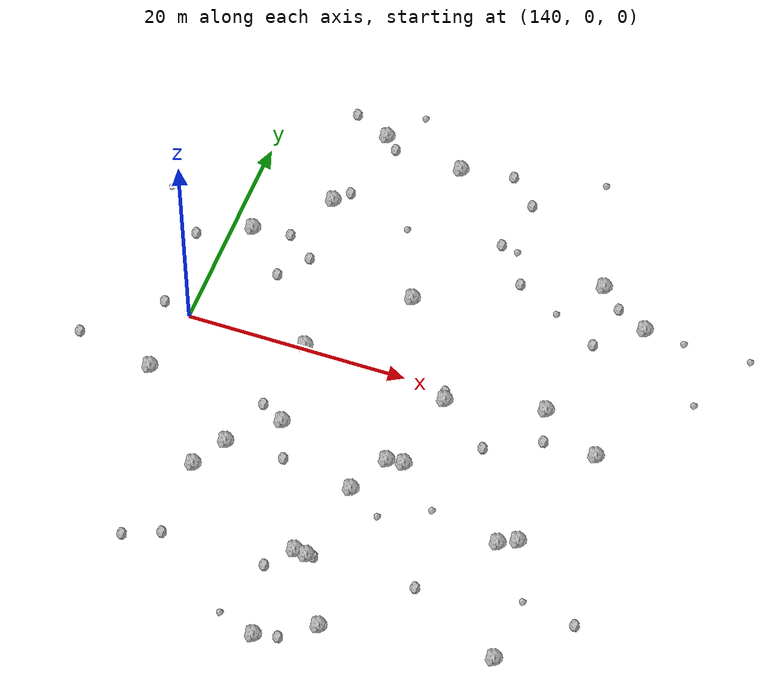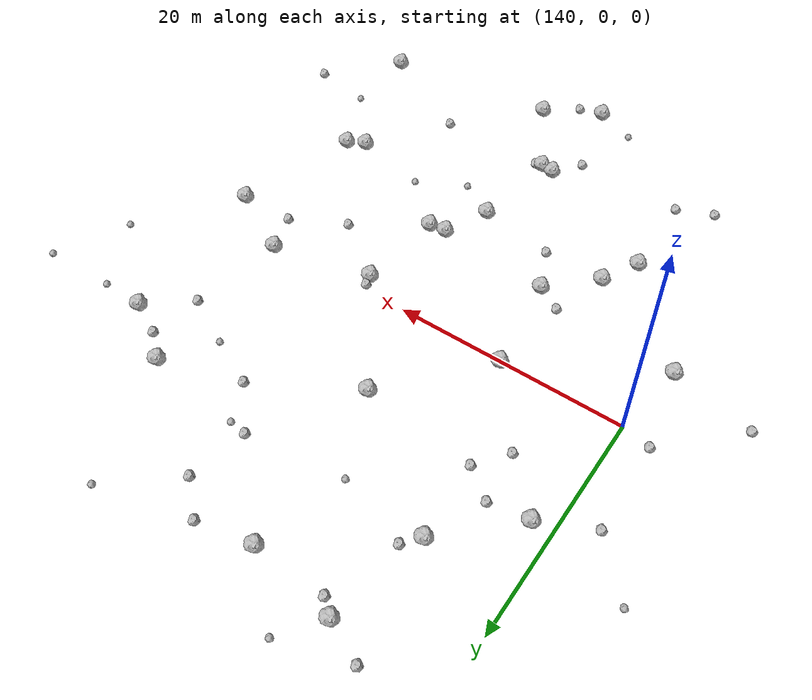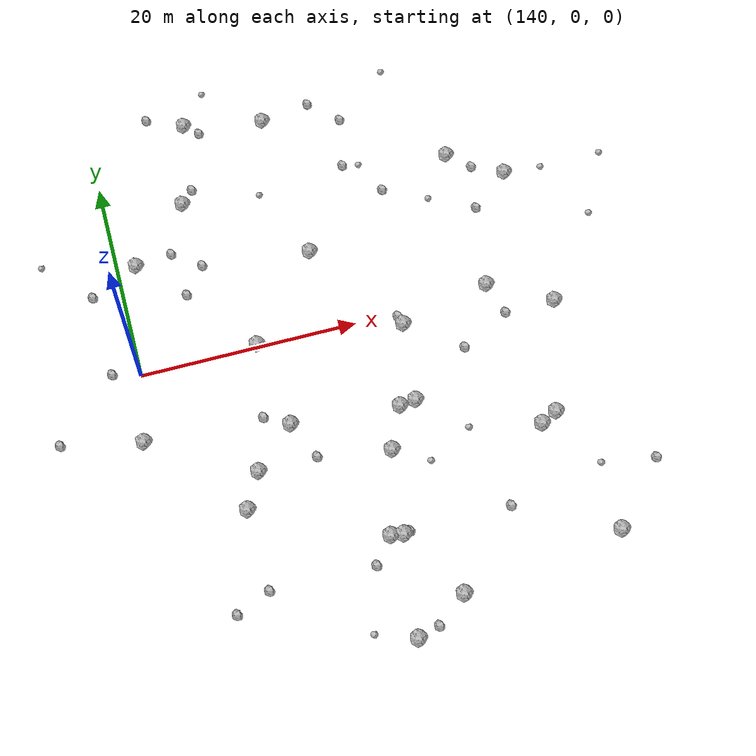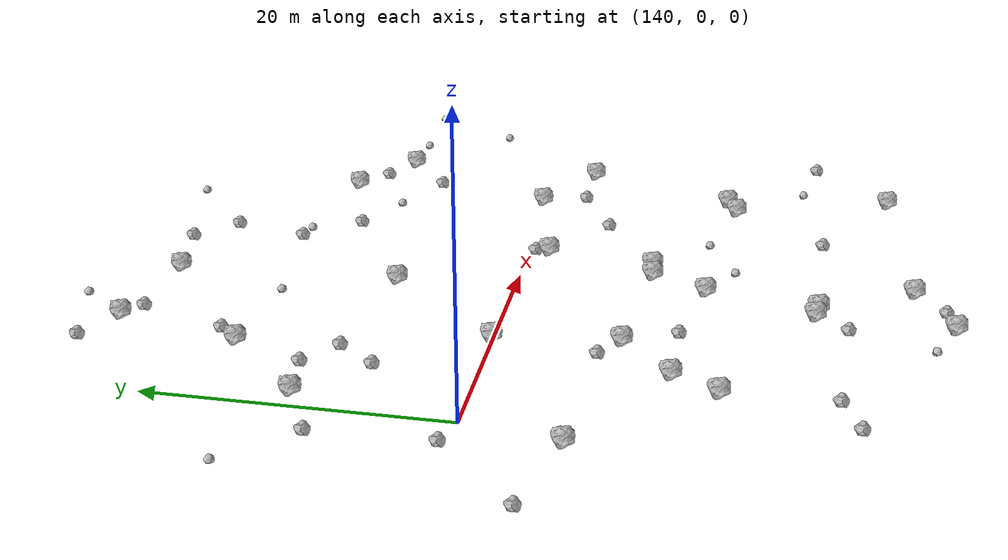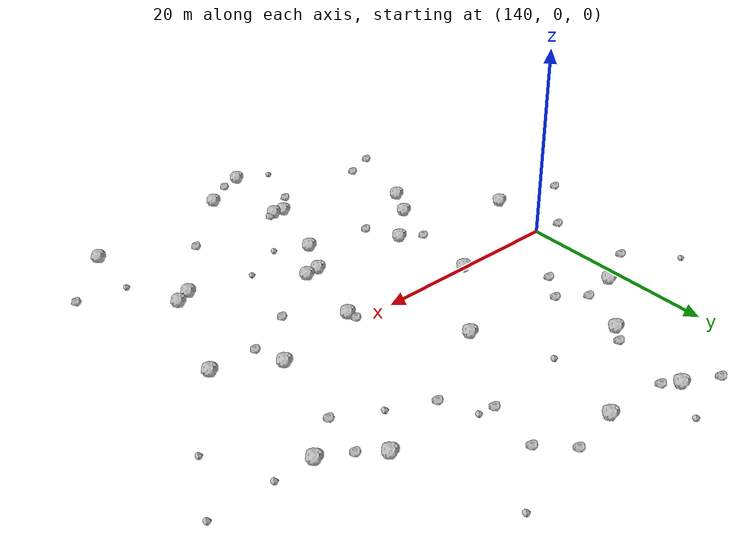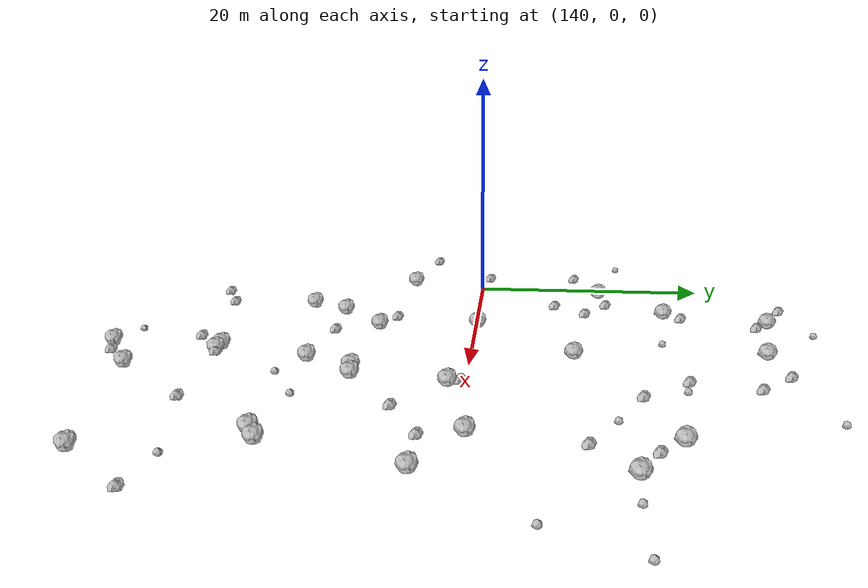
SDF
<sdf version="1.6">
 <world name="default">
  <include><uri>model://sun</uri></include>
  <model name="rock1_4_2">
   <include><uri>model://rock1</uri><pose>156.93741606243293 23.422918101218606 0.5 0 0 0</pose></include>
  </model>
  <model name="rock1_4_3">
   <include><uri>model://rock1</uri><pose>173.28340788370093 -13.848394326430721 0.5 0 0 0</pose></include>
  </model>
  <model name="rock1_4_4">
   <include><uri>model://rock1</uri><pose>146.30094931026267 -14.84856452842555 0.5 0 0 0</pose></include>
  </model>
  <model name="rock1_4_5">
   <include><uri>model://rock1</uri><pose>159.79754147850318 -12.783894107807296 0.5 0 0 0</pose></include>
  </model>
  <model name="rock1_4_6">
   <include><uri>model://rock1</uri><pose>163.11051875128848 -8.794097240468208 0.5 0 0 0</pose></include>
  </model>
  <model name="rock1_4_7">
   <include><uri>model://rock1</uri><pose>157.78948280120332 8.179302390472046 0.5 0 0 0</pose></include>
  </model>
  <model name="rock1_4_8">
   <include><uri>model://rock1</uri><pose>173.19066529108133 15.025487241058094 0.5 0 0 0</pose></include>
  </model>
  <model name="rock1_4_9">
   <include><uri>model://rock1</uri><pose>162.09843292256986 -26.683853249808912 0.5 0 0 0</pose></include>
  </model>
  <model name="rock1_4_10">
   <include><uri>model://rock1</uri><pose>147.38856782264486 16.250923309766165 0.5 0 0 0</pose></include>
  </model>
  <model name="rock1_4_11">
   <include><uri>model://rock1</uri><pose>149.38560168478887 24.838612899171927 0.5 0 0 0</pose></include>
  </model>
  <model name="rock1_4_12">
   <include><uri>model://rock1</uri><pose>164.14222225279372 -1.3110932050470296 0.5 0 0 0</pose></include>
  </model>
  <model name="rock1_4_13">
   <include><uri>model://rock1</uri><pose>157.33450047982683 -29.307297977218948 0.5 0 0 0</pose></include>
  </model>
  <model name="rock1_4_14">
   <include><uri>model://rock1</uri><pose>157.5519946609357 -20.24335999372881 0.5 0 0 0</pose></include>
  </model>
  <model name="rock1_4_15">
   <include><uri>model://rock1</uri><pose>158.66769738579822 -20.403741437088616 0.5 0 0 0</pose></include>
  </model>
  <model name="rock1_4_16">
   <include><uri>model://rock1</uri><pose>138.9601373239123 -6.459543161532334 0.5 0 0 0</pose></include>
  </model>
  <model name="rock1_4_17">
   <include><uri>model://rock1</uri><pose>178.00586174741545 11.708793628481985 0.5 0 0 0</pose></include>
  </model>
  <model name="rock1_4_18">
   <include><uri>model://rock1</uri><pose>161.63398655442143 -8.972786379212806 0.5 0 0 0</pose></include>
  </model>
  <model name="rock1_4_19">
   <include><uri>model://rock1</uri><pose>148.03892063005662 -11.708514670587146 0.5 0 0 0</pose></include>
  </model>
  <model name="rock1_4_20">
   <include><uri>model://rock1</uri><pose>178.21840534801038 -2.573838765123252 0.5 0 0 0</pose></include>
  </model>
  <model name="rock1_4_21">
   <include><uri>model://rock1</uri><pose>172.68702805020828 0.5953205102471628 0.5 0 0 0</pose></include>
  </model>
  <model name="rock1_4_22">
   <include><uri>model://rock1</uri><pose>176.75047925811646 -24.823132564933967 0.5 0 0 0</pose></include>
  </model>
  <model name="rock1_4_23">
   <include><uri>model://rock1</uri><pose>150.76802779783443 0.1575239360637113 0.5 0 0 0</pose></include>
  </model>
  <model name="rock1_4_24">
   <include><uri>model://rock1</uri><pose>174.82235957833356 -13.086328742244604 0.5 0 0 0</pose></include>
  </model>
  <model name="rock1_4_25">
   <include><uri>model://rock1</uri><pose>151.80996899185456 -8.148158475737613 0.5 0 0 0</pose></include>
  </model>
  <model name="rock1_4_26">
   <include><uri>model://rock1</uri><pose>141.78899589736912 10.86191504912275 0.5 0 0 0</pose></include>
  </model>
  <model name="rock2_4_0">
   <include><uri>model://rock2</uri><pose>145.95653241090284 26.486453630541156 0.3 0 0 0</pose></include>
  </model>
  <model name="rock2_4_1">
   <include><uri>model://rock2</uri><pose>155.6506345994608 -22.441326933016327 0.3 0 0 0</pose></include>
  </model>
  <model name="rock2_4_2">
   <include><uri>model://rock2</uri><pose>181.9070347449461 -19.421866869826314 0.3 0 0 0</pose></include>
  </model>
  <model name="rock2_4_3">
   <include><uri>model://rock2</uri><pose>173.500049539719 -2.549039513451458 0.3 0 0 0</pose></include>
  </model>
  <model name="rock2_4_4">
   <include><uri>model://rock2</uri><pose>131.75641097930247 -4.868827853122802 0.3 0 0 0</pose></include>
  </model>
  <model name="rock2_4_5">
   <include><uri>model://rock2</uri><pose>153.26757214002131 -11.67698237889697 0.3 0 0 0</pose></include>
  </model>
  <model name="rock2_4_6">
   <include><uri>model://rock2</uri><pose>168.27175516153932 -20.340859348695155 0.3 0 0 0</pose></include>
  </model>
  <model name="rock2_4_7">
   <include><uri>model://rock2</uri><pose>161.67131880791572 24.28178366245269 0.3 0 0 0</pose></include>
  </model>
  <model name="rock2_4_8">
   <include><uri>model://rock2</uri><pose>146.37843230520824 -22.206553548889957 0.3 0 0 0</pose></include>
  </model>
  <model name="rock2_4_9">
   <include><uri>model://rock2</uri><pose>145.19047591477397 11.33963862951451 0.3 0 0 0</pose></include>
  </model>
  <model name="rock2_4_10">
   <include><uri>model://rock2</uri><pose>147.72166533037722 9.4088824708368 0.3 0 0 0</pose></include>
  </model>
  <model name="rock2_4_11">
   <include><uri>model://rock2</uri><pose>145.6804622220797 6.78283331586583 0.3 0 0 0</pose></include>
  </model>
  <model name="rock2_4_12">
   <include><uri>model://rock2</uri><pose>150.60353051572312 23.724336858503655 0.3 0 0 0</pose></include>
  </model>
  <model name="rock2_4_13">
   <include><uri>model://rock2</uri><pose>159.28588050288192 -28.735611423051843 0.3 0 0 0</pose></include>
  </model>
  <model name="rock2_4_14">
   <include><uri>model://rock2</uri><pose>137.25339702347168 8.72473219630426 0.3 0 0 0</pose></include>
  </model>
  <model name="rock2_4_15">
   <include><uri>model://rock2</uri><pose>174.21418832384236 8.736962930934148 0.3 0 0 0</pose></include>
  </model>
  <model name="rock2_4_16">
   <include><uri>model://rock2</uri><pose>168.85078095293605 -4.934224308317216 0.3 0 0 0</pose></include>
  </model>
  <model name="rock2_4_17">
   <include><uri>model://rock2</uri><pose>163.173747205527 16.563372981976308 0.3 0 0 0</pose></include>
  </model>
  <model name="rock2_4_18">
   <include><uri>model://rock2</uri><pose>137.48965405505533 0.6663427580326982 0.3 0 0 0</pose></include>
  </model>
  <model name="rock2_4_19">
   <include><uri>model://rock2</uri><pose>164.26769589554357 21.69527902551566 0.3 0 0 0</pose></include>
  </model>
  <model name="rock2_4_20">
   <include><uri>model://rock2</uri><pose>159.20966485644524 -20.2606011547733 0.3 0 0 0</pose></include>
  </model>
  <model name="rock2_4_21">
   <include><uri>model://rock2</uri><pose>143.29703802477005 -23.49850864172087 0.3 0 0 0</pose></include>
  </model>
  <model name="rock2_4_22">
   <include><uri>model://rock2</uri><pose>148.54578667002482 17.634656896629537 0.3 0 0 0</pose></include>
  </model>
  <model name="rock2_4_23">
   <include><uri>model://rock2</uri><pose>149.60703042238598 -6.8690404637912685 0.3 0 0 0</pose></include>
  </model>
  <model name="rock2_4_24">
   <include><uri>model://rock2</uri><pose>163.8472633733617 -0.3724567919276822 0.3 0 0 0</pose></include>
  </model>
  <model name="rock2_4_25">
   <include><uri>model://rock2</uri><pose>166.14477835659176 12.950313813506575 0.3 0 0 0</pose></include>
  </model>
  <model name="rock2_4_26">
   <include><uri>model://rock2</uri><pose>175.12544649552223 13.198169922876104 0.3 0 0 0</pose></include>
  </model>
  <model name="rock3_4_0">
   <include><uri>model://rock3</uri><pose>164.69408677846104 16.26188679309454 0.2 0 0 0</pose></include>
  </model>
  <model name="rock3_4_1">
   <include><uri>model://rock3</uri><pose>162.79916066295203 -14.607125816100314 0.2 0 0 0</pose></include>
  </model>
  <model name="rock3_4_2">
   <include><uri>model://rock3</uri><pose>170.1252108308916 10.889175143618715 0.2 0 0 0</pose></include>
  </model>
  <model name="rock3_4_3">
   <include><uri>model://rock3</uri><pose>151.88060202924802 28.14334689575975 0.2 0 0 0</pose></include>
  </model>
  <model name="rock3_4_4">
   <include><uri>model://rock3</uri><pose>166.92937067200754 -12.481309195127611 0.2 0 0 0</pose></include>
  </model>
  <model name="rock3_4_5">
   <include><uri>model://rock3</uri><pose>181.59173754656766 11.500600546393486 0.2 0 0 0</pose></include>
  </model>
  <model name="rock3_4_6">
   <include><uri>model://rock3</uri><pose>133.2141213601945 12.989050692076454 0.2 0 0 0</pose></include>
  </model>
  <model name="rock3_4_7">
   <include><uri>model://rock3</uri><pose>153.86744083041344 -28.05226324544091 0.2 0 0 0</pose></include>
  </model>
  <model name="rock3_4_8">
   <include><uri>model://rock3</uri><pose>187.59555449083226 11.561134643487335 0.2 0 0 0</pose></include>
  </model>
  <model name="rock3_4_9">
   <include><uri>model://rock3</uri><pose>169.7347605193987 26.141150194930724 0.2 0 0 0</pose></include>
  </model>
  <model name="rock3_4_10">
   <include><uri>model://rock3</uri><pose>154.67500360317214 15.437363082438821 0.2 0 0 0</pose></include>
  </model>
  <model name="rock3_4_11">
   <include><uri>model://rock3</uri><pose>177.0890196709979 -18.63961531918161 0.2 0 0 0</pose></include>
  </model>
  <model name="rock3_4_12">
   <include><uri>model://rock3</uri><pose>184.38811841144695 5.444880310814881 0.2 0 0 0</pose></include>
  </model>
 </world>
</sdf>
